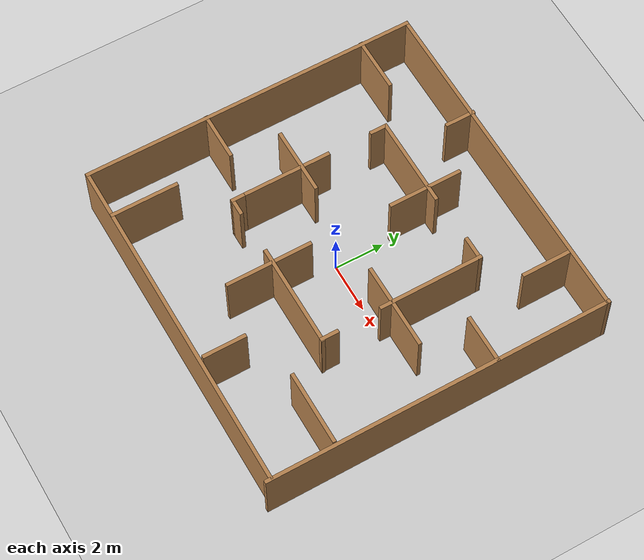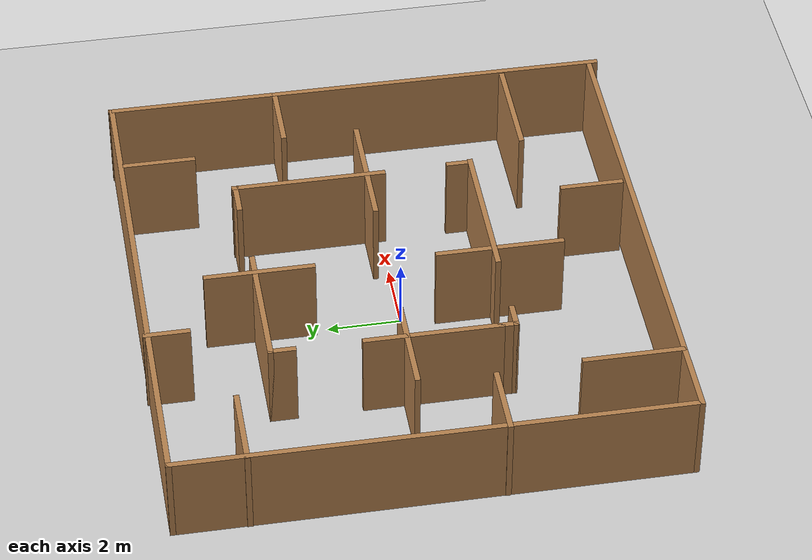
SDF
<sdf version="1.6">
 <world name="default">
  <light name="sun" type="directional">
   <pose>0 0 10 0 -0 0</pose>
   <diffuse>0.8 0.8 0.8 1</diffuse>
   <specular>0.2 0.2 0.2 1</specular>
   <attenuation>
    <range>1000</range>
    <constant>0.9</constant>
    <linear>0.01</linear>
    <quadratic>0.001</quadratic>
   </attenuation>
   <direction>-0.5 0.1 -0.9</direction>
  </light>
  <model name="ground_plane">
   <static>1</static>
   <link name="link">
    <collision name="collision">
     <geometry><plane><normal>0 0 1</normal><size>100 100</size></plane></geometry>
     <surface><friction><ode><mu>100</mu><mu2>50</mu2></ode></friction></surface>
    </collision>
    <visual name="visual">
     <cast_shadows>0</cast_shadows>
     <geometry><plane><normal>0 0 1</normal><size>100 100</size></plane></geometry>
     <material>
      <script><uri>file://media/materials/scripts/gazebo.material</uri><name>Gazebo/Grey</name></script>
     </material>
    </visual>
   </link>
  </model>
  <gravity>0 0 -9.8</gravity>
  <magnetic_field>6e-06 2.3e-05 -4.2e-05</magnetic_field>
  <atmosphere type="adiabatic"/>
  <physics name="default_physics" default="0" type="ode">
   <max_step_size>0.001</max_step_size>
   <real_time_factor>1</real_time_factor>
   <real_time_update_rate>1000</real_time_update_rate>
  </physics>
  <scene><ambient>0.4 0.4 0.4 1</ambient><background>0.7 0.7 0.7 1</background><shadows>1</shadows></scene>
  <audio><device>default</device></audio>
  <spherical_coordinates>
   <surface_model>EARTH_WGS84</surface_model>
   <latitude_deg>0</latitude_deg>
   <longitude_deg>0</longitude_deg>
   <elevation>0</elevation>
   <heading_deg>0</heading_deg>
  </spherical_coordinates>
  <model name="world4">
   <pose>0.203693 0.120969 0 0 -0 0</pose>
   <link name="Wall_0">
    <collision name="Wall_0_Collision">
     <geometry><box><size>14 0.15 2.5</size></box></geometry>
     <pose>0 0 1.25 0 -0 0</pose>
    </collision>
    <visual name="Wall_0_Visual">
     <pose>0 0 1.25 0 -0 0</pose>
     <geometry><box><size>14 0.15 2.5</size></box></geometry>
     <material>
      <script><uri>file://media/materials/scripts/gazebo.material</uri><name>Gazebo/Wood</name></script>
      <ambient>1 1 1 1</ambient>
     </material>
     <meta><layer>0</layer></meta>
    </visual>
    <pose>-0.020904 -6.74324 0 0 -0 0</pose>
   </link>
   <link name="Wall_11">
    <collision name="Wall_11_Collision">
     <geometry><box><size>3.5 0.15 2.5</size></box></geometry>
     <pose>0 0 1.25 0 -0 0</pose>
    </collision>
    <visual name="Wall_11_Visual">
     <pose>0 0 1.25 0 -0 0</pose>
     <geometry><box><size>3.5 0.15 2.5</size></box></geometry>
     <material>
      <script><uri>file://media/materials/scripts/gazebo.material</uri><name>Gazebo/Wood</name></script>
      <ambient>1 1 1 1</ambient>
     </material>
     <meta><layer>0</layer></meta>
    </visual>
    <pose>-0.363487 -2.78338 0 0 -0 -1.5708</pose>
   </link>
   <link name="Wall_13">
    <collision name="Wall_13_Collision">
     <geometry><box><size>2.75 0.15 2.5</size></box></geometry>
     <pose>0 0 1.25 0 -0 0</pose>
    </collision>
    <visual name="Wall_13_Visual">
     <pose>0 0 1.25 0 -0 0</pose>
     <geometry><box><size>2.75 0.15 2.5</size></box></geometry>
     <material>
      <script><uri>file://media/materials/scripts/gazebo.material</uri><name>Gazebo/Wood</name></script>
      <ambient>1 1 1 1</ambient>
     </material>
     <meta><layer>0</layer></meta>
    </visual>
    <pose>-3.62871 0.237274 0 0 -0 0</pose>
   </link>
   <link name="Wall_15">
    <collision name="Wall_15_Collision">
     <geometry><box><size>3.5 0.15 2.5</size></box></geometry>
     <pose>0 0 1.25 0 -0 0</pose>
    </collision>
    <visual name="Wall_15_Visual">
     <pose>0 0 1.25 0 -0 0</pose>
     <geometry><box><size>3.5 0.15 2.5</size></box></geometry>
     <material>
      <script><uri>file://media/materials/scripts/gazebo.material</uri><name>Gazebo/Wood</name></script>
      <ambient>1 1 1 1</ambient>
     </material>
     <meta><layer>0</layer></meta>
    </visual>
    <pose>3.3463 0.263361 0 0 -0 0</pose>
   </link>
   <link name="Wall_17">
    <collision name="Wall_17_Collision">
     <geometry><box><size>3.75 0.15 2.5</size></box></geometry>
     <pose>0 0 1.25 0 -0 0</pose>
    </collision>
    <visual name="Wall_17_Visual">
     <pose>0 0 1.25 0 -0 0</pose>
     <geometry><box><size>3.75 0.15 2.5</size></box></geometry>
     <material>
      <script><uri>file://media/materials/scripts/gazebo.material</uri><name>Gazebo/Wood</name></script>
      <ambient>1 1 1 1</ambient>
     </material>
     <meta><layer>0</layer></meta>
    </visual>
    <pose>-1.5374 3.81119 0 0 -0 3.14159</pose>
   </link>
   <link name="Wall_18">
    <collision name="Wall_18_Collision">
     <geometry><box><size>0.75 0.15 2.5</size></box></geometry>
     <pose>0 0 1.25 0 -0 0</pose>
    </collision>
    <visual name="Wall_18_Visual">
     <pose>0 0 1.25 0 -0 0</pose>
     <geometry><box><size>0.75 0.15 2.5</size></box></geometry>
     <material>
      <script><uri>file://media/materials/scripts/gazebo.material</uri><name>Gazebo/Wood</name></script>
      <ambient>1 1 1 1</ambient>
     </material>
     <meta><layer>0</layer></meta>
    </visual>
    <pose>-3.3374 3.51119 0 0 -0 -1.5708</pose>
   </link>
   <link name="Wall_2">
    <collision name="Wall_2_Collision">
     <geometry><box><size>14 0.15 2.5</size></box></geometry>
     <pose>0 0 1.25 0 -0 0</pose>
    </collision>
    <visual name="Wall_2_Visual">
     <pose>0 0 1.25 0 -0 0</pose>
     <geometry><box><size>14 0.15 2.5</size></box></geometry>
     <material>
      <script><uri>file://media/materials/scripts/gazebo.material</uri><name>Gazebo/Wood</name></script>
      <ambient>1 1 1 1</ambient>
     </material>
     <meta><layer>0</layer></meta>
    </visual>
    <pose>6.96303 -0.000335 0 0 -0 -1.5708</pose>
   </link>
   <link name="Wall_20">
    <collision name="Wall_20_Collision">
     <geometry><box><size>3.75 0.15 2.5</size></box></geometry>
     <pose>0 0 1.25 0 -0 0</pose>
    </collision>
    <visual name="Wall_20_Visual">
     <pose>0 0 1.25 0 -0 0</pose>
     <geometry><box><size>3.75 0.15 2.5</size></box></geometry>
     <material>
      <script><uri>file://media/materials/scripts/gazebo.material</uri><name>Gazebo/Wood</name></script>
      <ambient>1 1 1 1</ambient>
     </material>
     <meta><layer>0</layer></meta>
    </visual>
    <pose>-3.3374 -0.467509 0 0 -0 -1.5708</pose>
   </link>
   <link name="Wall_21">
    <collision name="Wall_21_Collision">
     <geometry><box><size>0.56 0.15 2.5</size></box></geometry>
     <pose>0 0 1.25 0 -0 0</pose>
    </collision>
    <visual name="Wall_21_Visual">
     <pose>0 0 1.25 0 -0 0</pose>
     <geometry><box><size>0.56 0.15 2.5</size></box></geometry>
     <material>
      <script><uri>file://media/materials/scripts/gazebo.material</uri><name>Gazebo/Wood</name></script>
      <ambient>1 1 1 1</ambient>
     </material>
     <meta><layer>0</layer></meta>
    </visual>
    <pose>-3.3374 -2.44251 0 0 -0 -1.5708</pose>
   </link>
   <link name="Wall_22">
    <collision name="Wall_22_Collision">
     <geometry><box><size>0.75 0.15 2.5</size></box></geometry>
     <pose>0 0 1.25 0 -0 0</pose>
    </collision>
    <visual name="Wall_22_Visual">
     <pose>0 0 1.25 0 -0 0</pose>
     <geometry><box><size>0.75 0.15 2.5</size></box></geometry>
     <material>
      <script><uri>file://media/materials/scripts/gazebo.material</uri><name>Gazebo/Wood</name></script>
      <ambient>1 1 1 1</ambient>
     </material>
     <meta><layer>0</layer></meta>
    </visual>
    <pose>-3.0374 -2.64751 0 0 -0 0</pose>
   </link>
   <link name="Wall_24">
    <collision name="Wall_24_Collision">
     <geometry><box><size>4.25 0.15 2.5</size></box></geometry>
     <pose>0 0 1.25 0 -0 0</pose>
    </collision>
    <visual name="Wall_24_Visual">
     <pose>0 0 1.25 0 -0 0</pose>
     <geometry><box><size>4.25 0.15 2.5</size></box></geometry>
     <material>
      <script><uri>file://media/materials/scripts/gazebo.material</uri><name>Gazebo/Wood</name></script>
      <ambient>1 1 1 1</ambient>
     </material>
     <meta><layer>0</layer></meta>
    </visual>
    <pose>1.18347 -2.62838 0 0 -0 0</pose>
   </link>
   <link name="Wall_25">
    <collision name="Wall_25_Collision">
     <geometry><box><size>0.75 0.15 2.5</size></box></geometry>
     <pose>0 0 1.25 0 -0 0</pose>
    </collision>
    <visual name="Wall_25_Visual">
     <pose>0 0 1.25 0 -0 0</pose>
     <geometry><box><size>0.75 0.15 2.5</size></box></geometry>
     <material>
      <script><uri>file://media/materials/scripts/gazebo.material</uri><name>Gazebo/Wood</name></script>
      <ambient>1 1 1 1</ambient>
     </material>
     <meta><layer>0</layer></meta>
    </visual>
    <pose>3.20347 -2.32838 0 0 -0 1.5708</pose>
   </link>
   <link name="Wall_27">
    <collision name="Wall_27_Collision">
     <geometry><box><size>4.25 0.15 2.5</size></box></geometry>
     <pose>0 0 1.25 0 -0 0</pose>
    </collision>
    <visual name="Wall_27_Visual">
     <pose>0 0 1.25 0 -0 0</pose>
     <geometry><box><size>4.25 0.15 2.5</size></box></geometry>
     <material>
      <script><uri>file://media/materials/scripts/gazebo.material</uri><name>Gazebo/Wood</name></script>
      <ambient>1 1 1 1</ambient>
     </material>
     <meta><layer>0</layer></meta>
    </visual>
    <pose>3.15825 1.87423 0 0 -0 1.5708</pose>
   </link>
   <link name="Wall_28">
    <collision name="Wall_28_Collision">
     <geometry><box><size>1 0.15 2.5</size></box></geometry>
     <pose>0 0 1.25 0 -0 0</pose>
    </collision>
    <visual name="Wall_28_Visual">
     <pose>0 0 1.25 0 -0 0</pose>
     <geometry><box><size>1 0.15 2.5</size></box></geometry>
     <material>
      <script><uri>file://media/materials/scripts/gazebo.material</uri><name>Gazebo/Wood</name></script>
      <ambient>1 1 1 1</ambient>
     </material>
     <meta><layer>0</layer></meta>
    </visual>
    <pose>2.73325 3.89423 0 0 -0 3.14159</pose>
   </link>
   <link name="Wall_30">
    <collision name="Wall_30_Collision">
     <geometry><box><size>2 0.15 2.5</size></box></geometry>
     <pose>0 0 1.25 0 -0 0</pose>
    </collision>
    <visual name="Wall_30_Visual">
     <pose>0 0 1.25 0 -0 0</pose>
     <geometry><box><size>2 0.15 2.5</size></box></geometry>
     <material>
      <script><uri>file://media/materials/scripts/gazebo.material</uri><name>Gazebo/Wood</name></script>
      <ambient>1 1 1 1</ambient>
     </material>
     <meta><layer>0</layer></meta>
    </visual>
    <pose>4.56695 5.83401 0 0 -0 -1.5708</pose>
   </link>
   <link name="Wall_33">
    <collision name="Wall_33_Collision">
     <geometry><box><size>2.25 0.15 2.5</size></box></geometry>
     <pose>0 0 1.25 0 -0 0</pose>
    </collision>
    <visual name="Wall_33_Visual">
     <pose>0 0 1.25 0 -0 0</pose>
     <geometry><box><size>2.25 0.15 2.5</size></box></geometry>
     <material>
      <script><uri>file://media/materials/scripts/gazebo.material</uri><name>Gazebo/Wood</name></script>
      <ambient>1 1 1 1</ambient>
     </material>
     <meta><layer>0</layer></meta>
    </visual>
    <pose>-5.91349 4.88075 0 0 -0 0</pose>
   </link>
   <link name="Wall_35">
    <collision name="Wall_35_Collision">
     <geometry><box><size>2.75 0.15 2.5</size></box></geometry>
     <pose>0 0 1.25 0 -0 0</pose>
    </collision>
    <visual name="Wall_35_Visual">
     <pose>0 0 1.25 0 -0 0</pose>
     <geometry><box><size>2.75 0.15 2.5</size></box></geometry>
     <material>
      <script><uri>file://media/materials/scripts/gazebo.material</uri><name>Gazebo/Wood</name></script>
      <ambient>1 1 1 1</ambient>
     </material>
     <meta><layer>0</layer></meta>
    </visual>
    <pose>-4.9653 -5.42869 0 0 -0 -1.5708</pose>
   </link>
   <link name="Wall_37">
    <collision name="Wall_37_Collision">
     <geometry><box><size>3 0.15 2.5</size></box></geometry>
     <pose>0 0 1.25 0 -0 0</pose>
    </collision>
    <visual name="Wall_37_Visual">
     <pose>0 0 1.25 0 -0 0</pose>
     <geometry><box><size>3 0.15 2.5</size></box></geometry>
     <material>
      <script><uri>file://media/materials/scripts/gazebo.material</uri><name>Gazebo/Wood</name></script>
      <ambient>1 1 1 1</ambient>
     </material>
     <meta><layer>0</layer></meta>
    </visual>
    <pose>5.35682 -4.19807 0 0 -0 0</pose>
   </link>
   <link name="Wall_39">
    <collision name="Wall_39_Collision">
     <geometry><box><size>1.75 0.15 2.5</size></box></geometry>
     <pose>0 0 1.25 0 -0 0</pose>
    </collision>
    <visual name="Wall_39_Visual">
     <pose>0 0 1.25 0 -0 0</pose>
     <geometry><box><size>1.75 0.15 2.5</size></box></geometry>
     <material>
      <script><uri>file://media/materials/scripts/gazebo.material</uri><name>Gazebo/Wood</name></script>
      <ambient>1 1 1 1</ambient>
     </material>
     <meta><layer>0</layer></meta>
    </visual>
    <pose>1.73717 -5.73066 0 0 -0 -1.5708</pose>
   </link>
   <link name="Wall_41">
    <collision name="Wall_41_Collision">
     <geometry><box><size>2 0.15 2.5</size></box></geometry>
     <pose>0 0 1.25 0 -0 0</pose>
    </collision>
    <visual name="Wall_41_Visual">
     <pose>0 0 1.25 0 -0 0</pose>
     <geometry><box><size>2 0.15 2.5</size></box></geometry>
     <material>
      <script><uri>file://media/materials/scripts/gazebo.material</uri><name>Gazebo/Wood</name></script>
      <ambient>1 1 1 1</ambient>
     </material>
     <meta><layer>0</layer></meta>
    </visual>
    <pose>-6.03784 -1.79066 0 0 -0 0</pose>
   </link>
   <link name="Wall_43">
    <collision name="Wall_43_Collision">
     <geometry><box><size>1.25 0.15 2.5</size></box></geometry>
     <pose>0 0 1.25 0 -0 0</pose>
    </collision>
    <visual name="Wall_43_Visual">
     <pose>0 0 1.25 0 -0 0</pose>
     <geometry><box><size>1.25 0.15 2.5</size></box></geometry>
     <material>
      <script><uri>file://media/materials/scripts/gazebo.material</uri><name>Gazebo/Wood</name></script>
      <ambient>1 1 1 1</ambient>
     </material>
     <meta><layer>0</layer></meta>
    </visual>
    <pose>-2.23333 6.37534 0 0 -0 1.5708</pose>
   </link>
   <link name="Wall_45">
    <collision name="Wall_45_Collision">
     <geometry><box><size>2 0.15 2.5</size></box></geometry>
     <pose>0 0 1.25 0 -0 0</pose>
    </collision>
    <visual name="Wall_45_Visual">
     <pose>0 0 1.25 0 -0 0</pose>
     <geometry><box><size>2 0.15 2.5</size></box></geometry>
     <material>
      <script><uri>file://media/materials/scripts/gazebo.material</uri><name>Gazebo/Wood</name></script>
      <ambient>1 1 1 1</ambient>
     </material>
     <meta><layer>0</layer></meta>
    </visual>
    <pose>6.02829 2.29838 0 0 -0 0</pose>
   </link>
   <link name="Wall_6">
    <collision name="Wall_6_Collision">
     <geometry><box><size>13.75 0.15 2.5</size></box></geometry>
     <pose>0 0 1.25 0 -0 0</pose>
    </collision>
    <visual name="Wall_6_Visual">
     <pose>0 0 1.25 0 -0 0</pose>
     <geometry><box><size>13.75 0.15 2.5</size></box></geometry>
     <material>
      <script><uri>file://media/materials/scripts/gazebo.material</uri><name>Gazebo/Wood</name></script>
      <ambient>1 1 1 1</ambient>
     </material>
     <meta><layer>0</layer></meta>
    </visual>
    <pose>-6.9459 0.056762 0 0 -0 1.5708</pose>
   </link>
   <link name="Wall_7">
    <collision name="Wall_7_Collision">
     <geometry><box><size>14.0595 0.15 2.5</size></box></geometry>
     <pose>0 0 1.25 0 -0 0</pose>
    </collision>
    <visual name="Wall_7_Visual">
     <pose>0 0 1.25 0 -0 0</pose>
     <geometry><box><size>14.0595 0.15 2.5</size></box></geometry>
     <material>
      <script><uri>file://media/materials/scripts/gazebo.material</uri><name>Gazebo/Wood</name></script>
      <ambient>1 1 1 1</ambient>
     </material>
     <meta><layer>0</layer></meta>
    </visual>
    <pose>0.008565 6.87767 0 0 -0 0.003006</pose>
   </link>
   <link name="Wall_9">
    <collision name="Wall_9_Collision">
     <geometry><box><size>3 0.15 2.5</size></box></geometry>
     <pose>0 0 1.25 0 -0 0</pose>
    </collision>
    <visual name="Wall_9_Visual">
     <pose>0 0 1.25 0 -0 0</pose>
     <geometry><box><size>3 0.15 2.5</size></box></geometry>
     <material>
      <script><uri>file://media/materials/scripts/gazebo.material</uri><name>Gazebo/Wood</name></script>
      <ambient>1 1 1 1</ambient>
     </material>
     <meta><layer>0</layer></meta>
    </visual>
    <pose>-0.285226 3.69054 0 0 -0 -1.5708</pose>
   </link>
   <static>1</static>
  </model>
 </world>
</sdf>
